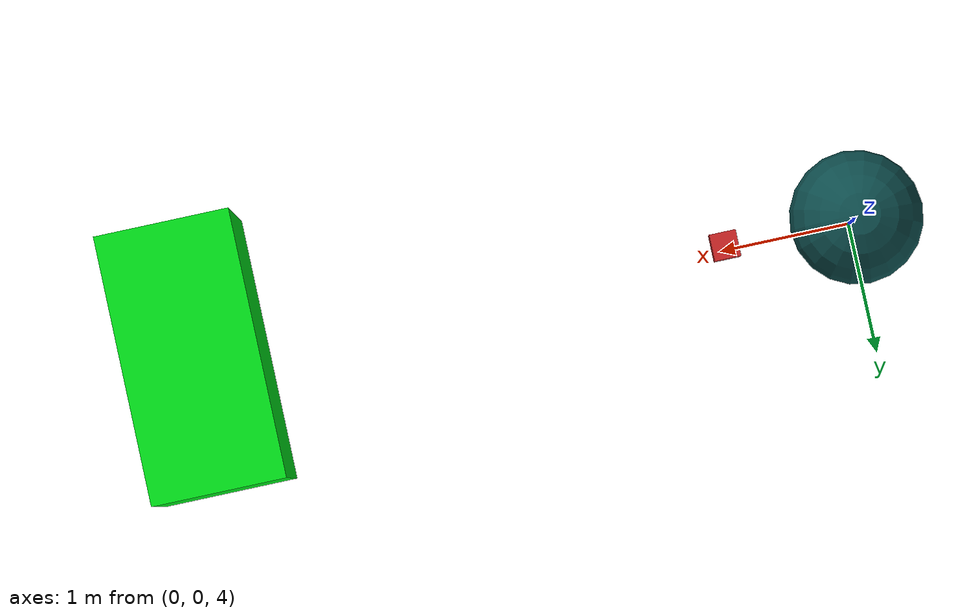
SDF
<sdf version="1.3">
    <world name="world_1">
        <scene>
            <ambient>0.5 0.5 0.5 1.0</ambient>
            <background>0.5 0.5 0.5 1.0</background>
            <shadows>true</shadows>
            <fog>
                <color>0.0 0.0 0.5 0.5</color>
                <type>linear</type>
                <start>2.0</start>
                <end>10.0</end>
                <density>0.5</density>
            </fog>
        </scene>
        <physics type="ode">
            <gravity>0.0 0.0 0.0</gravity>
            <ode>
                <solver>
                    <type>quick</type>
                    <dt>0.001</dt>
                    <iters>20</iters>
                    <sor>1.3</sor>
                </solver>
                <constraints>
                    <cfm>0</cfm>
                    <erp>0.2</erp>
                    <contact_max_correcting_vel>100.0</contact_max_correcting_vel>
                    <contact_surface_layer>0.0</contact_surface_layer>
                </constraints>
            </ode>
            <max_contacts>250</max_contacts>
        </physics>
        <model name="model_1">
            <pose>0.0 0.0 5.0 0.0 0.0 0.0</pose>
            <link name="link_1">
                <pose>0.0 0.0 0.0 0.0 0.0 0.0</pose>
                <inertial>
                    <pose>0.0 0.0 0.0 0.0 0.0 0.0</pose>
                    <inertia>
                        <ixx>0.0</ixx>
                        <ixy>0.0</ixy>
                        <ixz>0.0</ixz>
                        <iyy>1.0</iyy>
                        <iyz>0.0</iyz>
                        <izz>1.0</izz>
                    </inertia>
                    <mass>10.0</mass>
                </inertial>
                <visual name="visual_sphere">
                    <pose>0.0 0.0 0.0 0.0 0.0 0.0</pose>
                    <geometry>
                        <sphere>
                            <radius>0.5</radius>
                        </sphere>
                    </geometry>
                    <material>
                        <ambient>0.05 0.3 0.3 1.0</ambient>
                        <script>Gazebo/Red</script>
                    </material>
                    <cast_shadows>true</cast_shadows>
                    <laser_retro>100.0</laser_retro>
                </visual>
                <collision name="collision_sphere">
                    <pose>0.0 0.0 0.0 0.0 0.0 0.0</pose>
                    <max_contacts>250</max_contacts>
                    <geometry>
                        <sphere>
                            <radius>0.5</radius>
                        </sphere>
                    </geometry>
                    <surface>
                        <friction>
                            <ode>
                                <mu>0.5</mu>
                                <mu2>0.2</mu2>
                                <fdir1>1.0 0 0</fdir1>
                                <slip1>0</slip1>
                                <slip2>0</slip2>
                            </ode>
                        </friction>
                        <bounce>
                            <restitution_coefficient>0</restitution_coefficient>
                            <threshold>1000000.0</threshold>
                        </bounce>
                        <contact>
                            <ode>
                                <soft_cfm>0</soft_cfm>
                                <soft_erp>0.2</soft_erp>
                                <kp>1e15</kp>
                                <kd>1e13</kd>
                                <max_vel>100.0</max_vel>
                                <min_depth>0.0001</min_depth>
                            </ode>
                        </contact>
                    </surface>
                    <laser_retro>100.0</laser_retro>
                </collision>
                <sensor name="sensor_camera" type="depth">
                    <pose>0.0 0.0 0.0 0.0 0.0 0.0</pose>
                    <camera>
                        <horizontal_fov>1.578</horizontal_fov>
                        <image>
                            <width>640</width>
                            <height>480</height>
                            <format>R8G8B8</format>
                        </image>
                        <clip>
                          <near>0.1</near>
                          <far>100</far>
                        </clip>
                        <depth_camera>
                          <output>points;normals;reflectance</output>
                        </depth_camera>
                    </camera>
                    <plugin name="plugin_1" filename="libgazebo_ros_depth_camera.so">
                        <alwaysOn>1</alwaysOn>
                        <updateRate>10.0</updateRate>
                        <imageTopicName>image_raw</imageTopicName>
                        <pointCloudTopicName>points</pointCloudTopicName>
                        <normalsTopicName>normals</normalsTopicName>
                        <cameraInfoTopicName>camera_info</cameraInfoTopicName>
                        <cameraName>depth_cam</cameraName>
                        <frameName>/base_link</frameName>
                        <reduceNormals>50</reduceNormals>
                        <pointCloudCutoff>0.001</pointCloudCutoff>
                        <distortionK1>0.00000001</distortionK1>
                        <distortionK2>0.00000001</distortionK2>
                        <distortionK3>0.00000001</distortionK3>
                        <distortionT1>0.00000001</distortionT1>
                        <distortionT2>0.00000001</distortionT2>
                    </plugin>
                    <always_on>true</always_on>
                    <update_rate>10.0</update_rate>
                </sensor>
                <gravity>false</gravity>
                <self_collide>true</self_collide>
                <kinematic>false</kinematic>
            </link>
            <static>false</static>
        </model>

        <model  name="box_reflectance">
          <pose>1.0 0.0 5.0 0 0 0</pose>
          <link name="box_link">
            <visual name="visual">
              <geometry>
                <box>
                  <size>.2 .2 .2</size>
                </box>
              </geometry>
              <material>
                <script>
                  <uri>file://media/materials/scripts/gazebo.material</uri>
                  <name>Gazebo/Red</name>
                </script>
              </material>
              <plugin filename="libReflectancePlugin.so" name="reflectance_plugin">
                <reflectance_map>
                  <uri>model://suv/materials/textures/</uri>
                  <name>wheels_01.png</name>
                </reflectance_map>
              </plugin>
            </visual>
            <collision name="visual">
              <geometry>
                <box>
                  <size>.2 .2 .2</size>
                </box>
              </geometry>
            </collision>
          </link>
        </model>

        <model name="model_2">
            <pose>5.0 0.0 5.0 0.0 0.0 0.0</pose>
            <link name="link_1">
                <pose>0.0 0.0 0.0 0.0 0.0 0.0</pose>
                <inertial>
                    <pose>0.0 0.0 0.0 0.0 0.0 0.0</pose>
                    <inertia>
                        <ixx>1.0</ixx>
                        <ixy>0.0</ixy>
                        <ixz>0.0</ixz>
                        <iyy>1.0</iyy>
                        <iyz>0.0</iyz>
                        <izz>1.0</izz>
                    </inertia>
                    <mass>10.0</mass>
                </inertial>
                <visual name="visual_box">
                    <pose>0.0 0.0 0.0 0.0 0.0 0.0</pose>
                    <geometry>
                        <box>
                            <size>1 2 2</size>
                        </box>
                    </geometry>
                    <material>
                        <ambient>0.00 0.9 0.1 1.0</ambient>
                        <script>Gazebo/Green</script>
                    </material>
                    <cast_shadows>true</cast_shadows>
                    <laser_retro>100.0</laser_retro>
                </visual>
                <collision name="collision_box">
                    <pose>0.0 0.0 0.0 0.0 0.0 0.0</pose>
                    <max_contacts>250</max_contacts>
                    <geometry>
                        <box>
                            <size>1 2 2</size>
                        </box>
                    </geometry>
                    <surface>
                        <friction>
                            <ode>
                                <mu>0.5</mu>
                                <mu2>0.2</mu2>
                                <fdir1>1.0 0 0</fdir1>
                                <slip1>0</slip1>
                                <slip2>0</slip2>
                            </ode>
                        </friction>
                        <bounce>
                            <restitution_coefficient>0</restitution_coefficient>
                            <threshold>1000000.0</threshold>
                        </bounce>
                        <contact>
                            <ode>
                                <soft_cfm>0</soft_cfm>
                                <soft_erp>0.2</soft_erp>
                                <kp>1e15</kp>
                                <kd>1e13</kd>
                                <max_vel>100.0</max_vel>
                                <min_depth>0.0001</min_depth>
                            </ode>
                        </contact>
                    </surface>
                    <laser_retro>100.0</laser_retro>
                </collision>
                <gravity>false</gravity>
                <self_collide>true</self_collide>
                <kinematic>false</kinematic>
            </link>
            <static>false</static>
        </model>
        <light type="point" name="light_1">
            <pose>0.0 0.0 10.0 0.0 0.0 0.0</pose>
            <diffuse>0.5 0.5 0.5 0.5</diffuse>
            <attenuation>
                <range>1000.0</range>
                <constant>0.01</constant>
                <quadratic>0.0001</quadratic>
            </attenuation>
            <direction>0 0 -1</direction>
            <spot>
                <inner_angle>1.57</inner_angle>
                <outer_angle>1.57</outer_angle>
                <falloff>1.0</falloff>
            </spot>
            <cast_shadows>true</cast_shadows>
        </light>
    </world>
</sdf>
